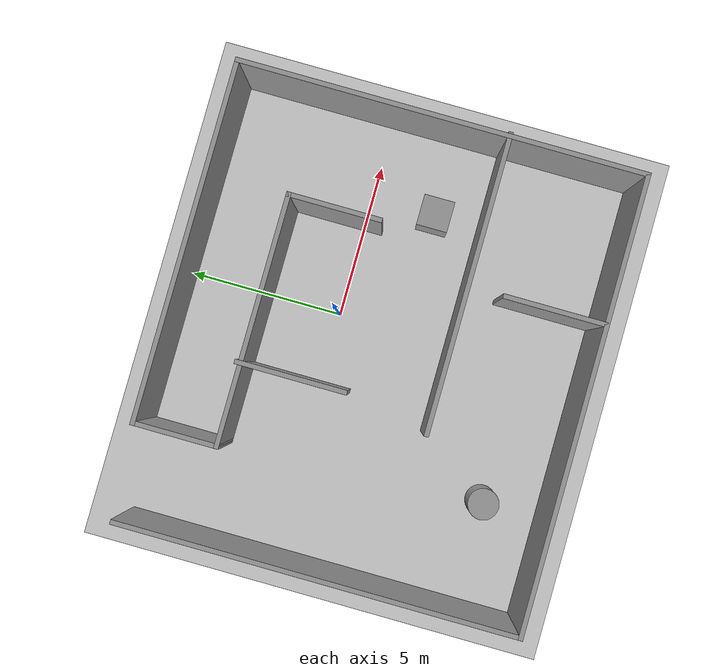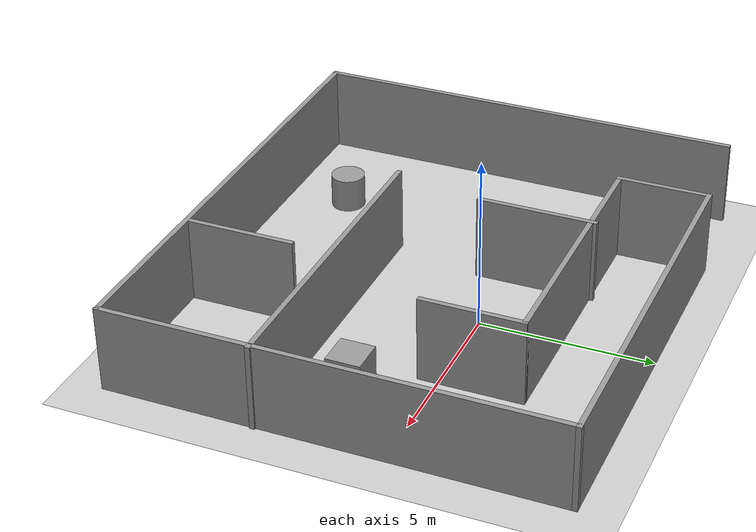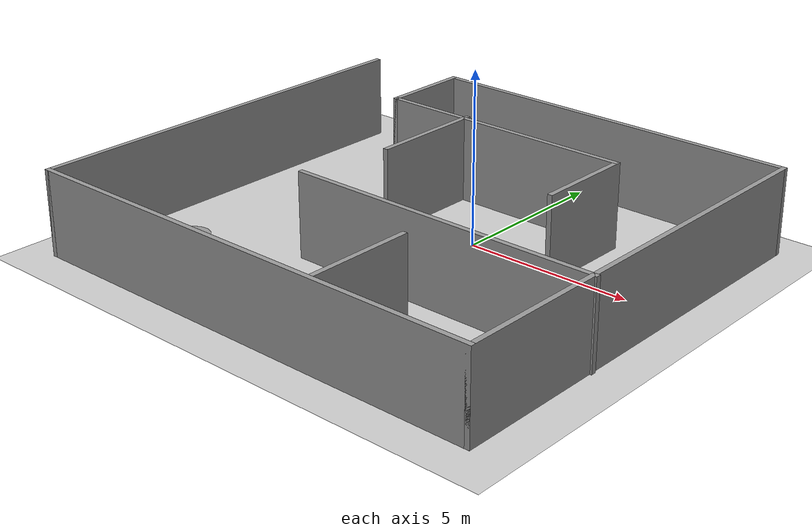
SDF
<sdf version="1.7">
 <world name="default">
  <light name="sun" type="directional">
   <pose>0 0 10 0 -0 0</pose>
   <diffuse>0.8 0.8 0.8 1</diffuse>
   <specular>0.2 0.2 0.2 1</specular>
   <attenuation>
    <range>1000</range>
    <constant>0.9</constant>
    <linear>0.01</linear>
    <quadratic>0.001</quadratic>
   </attenuation>
   <direction>-0.5 0.1 -0.9</direction>
   <spot><inner_angle>0</inner_angle><outer_angle>0</outer_angle><falloff>0</falloff></spot>
  </light>
  <model name="ground_plane">
   <static>1</static>
   <link name="link">
    <collision name="collision">
     <geometry><plane><normal>0 0 1</normal><size>100 100</size></plane></geometry>
     <surface>
      <contact><collide_bitmask>65535</collide_bitmask></contact>
      <friction><ode><mu>100</mu><mu2>50</mu2></ode></friction>
     </surface>
    </collision>
    <visual name="visual">
     <cast_shadows>0</cast_shadows>
     <geometry><plane><normal>0 0 1</normal><size>100 100</size></plane></geometry>
     <material>
      <script><uri>file://media/materials/scripts/gazebo.material</uri><name>Gazebo/Grey</name></script>
     </material>
    </visual>
   </link>
  </model>
  <gravity>0 0 -9.8</gravity>
  <magnetic_field>6e-06 2.3e-05 -4.2e-05</magnetic_field>
  <atmosphere type="adiabatic"/>
  <physics type="ode">
   <max_step_size>0.001</max_step_size>
   <real_time_factor>1</real_time_factor>
   <real_time_update_rate>1000</real_time_update_rate>
  </physics>
  <scene><ambient>0.4 0.4 0.4 1</ambient><background>0.7 0.7 0.7 1</background><shadows>1</shadows></scene>
  <spherical_coordinates>
   <surface_model>EARTH_WGS84</surface_model>
   <latitude_deg>0</latitude_deg>
   <longitude_deg>0</longitude_deg>
   <elevation>0</elevation>
   <heading_deg>0</heading_deg>
  </spherical_coordinates>
  <model name="worldd">
   <pose>-0.70113 -1.48092 0 0 -0 0</pose>
   <link name="Wall_11">
    <collision name="Wall_11_Collision">
     <geometry><box><size>9.5 0.15 2.5</size></box></geometry>
     <pose>0 0 1.25 0 -0 0</pose>
    </collision>
    <visual name="Wall_11_Visual">
     <pose>0 0 1.25 0 -0 0</pose>
     <geometry><box><size>9.5 0.15 2.5</size></box></geometry>
     <material>
      <script><uri>file://media/materials/scripts/gazebo.material</uri><name>Gazebo/Grey</name></script>
      <ambient>1 1 1 1</ambient>
     </material>
     <meta><layer>0</layer></meta>
    </visual>
    <pose>2.52566 -2.11179 0 0 -0 3.14159</pose>
   </link>
   <link name="Wall_13">
    <collision name="Wall_13_Collision">
     <geometry><box><size>3.25 0.15 2.5</size></box></geometry>
     <pose>0 0 1.25 0 -0 0</pose>
    </collision>
    <visual name="Wall_13_Visual">
     <pose>0 0 1.25 0 -0 0</pose>
     <geometry><box><size>3.25 0.15 2.5</size></box></geometry>
     <material>
      <script><uri>file://media/materials/scripts/gazebo.material</uri><name>Gazebo/Grey</name></script>
      <ambient>1 1 1 1</ambient>
     </material>
     <meta><layer>0</layer></meta>
    </visual>
    <pose>2.45386 -4.82587 0 0 -0 1.5708</pose>
   </link>
   <link name="Wall_15">
    <collision name="Wall_15_Collision">
     <geometry><box><size>3 0.15 2.5</size></box></geometry>
     <pose>0 0 1.25 0 -0 0</pose>
    </collision>
    <visual name="Wall_15_Visual">
     <pose>0 0 1.25 0 -0 0</pose>
     <geometry><box><size>3 0.15 2.5</size></box></geometry>
     <material>
      <script><uri>file://media/materials/scripts/gazebo.material</uri><name>Gazebo/Grey</name></script>
      <ambient>1 1 1 1</ambient>
     </material>
     <meta><layer>0</layer></meta>
    </visual>
    <pose>3.64934 2.4 0 0 -0 -1.5708</pose>
   </link>
   <link name="Wall_2">
    <collision name="Wall_2_Collision">
     <geometry><box><size>12.75 0.15 2.5</size></box></geometry>
     <pose>0 0 1.25 0 -0 0</pose>
    </collision>
    <visual name="Wall_2_Visual">
     <pose>0 0 1.25 0 -0 0</pose>
     <geometry><box><size>12.75 0.15 2.5</size></box></geometry>
     <material>
      <script><uri>file://media/materials/scripts/gazebo.material</uri><name>Gazebo/Grey</name></script>
      <ambient>1 1 1 1</ambient>
     </material>
     <meta><layer>0</layer></meta>
    </visual>
    <pose>-7.20066 -0.125 0 0 -0 -1.5708</pose>
   </link>
   <link name="Wall_3">
    <collision name="Wall_3_Collision">
     <geometry><box><size>14.5 0.15 2.5</size></box></geometry>
     <pose>0 0 1.25 0 -0 0</pose>
    </collision>
    <visual name="Wall_3_Visual">
     <pose>0 0 1.25 0 -0 0</pose>
     <geometry><box><size>14.5 0.15 2.5</size></box></geometry>
     <material>
      <script><uri>file://media/materials/scripts/gazebo.material</uri><name>Gazebo/Grey</name></script>
      <ambient>1 1 1 1</ambient>
     </material>
     <meta><layer>0</layer></meta>
    </visual>
    <pose>-0.025658 -6.425 0 0 -0 0</pose>
   </link>
   <link name="Wall_4">
    <collision name="Wall_4_Collision">
     <geometry><box><size>13 0.15 2.5</size></box></geometry>
     <pose>0 0 1.25 0 -0 0</pose>
    </collision>
    <visual name="Wall_4_Visual">
     <pose>0 0 1.25 0 -0 0</pose>
     <geometry><box><size>13 0.15 2.5</size></box></geometry>
     <material>
      <script><uri>file://media/materials/scripts/gazebo.material</uri><name>Gazebo/Grey</name></script>
      <ambient>1 1 1 1</ambient>
     </material>
     <meta><layer>0</layer></meta>
    </visual>
    <pose>7.14934 -0 0 0 -0 1.5708</pose>
   </link>
   <link name="Wall_5">
    <collision name="Wall_5_Collision">
     <geometry><box><size>11.5 0.15 2.5</size></box></geometry>
     <pose>0 0 1.25 0 -0 0</pose>
    </collision>
    <visual name="Wall_5_Visual">
     <pose>0 0 1.25 0 -0 0</pose>
     <geometry><box><size>11.5 0.15 2.5</size></box></geometry>
     <material>
      <script><uri>file://media/materials/scripts/gazebo.material</uri><name>Gazebo/Grey</name></script>
      <ambient>1 1 1 1</ambient>
     </material>
     <meta><layer>0</layer></meta>
    </visual>
    <pose>1.47434 6.425 0 0 -0 3.14159</pose>
   </link>
   <link name="Wall_6">
    <collision name="Wall_6_Collision">
     <geometry><box><size>2.75 0.15 2.5</size></box></geometry>
     <pose>0 0 1.25 0 -0 0</pose>
    </collision>
    <visual name="Wall_6_Visual">
     <pose>0 0 1.25 0 -0 0</pose>
     <geometry><box><size>2.75 0.15 2.5</size></box></geometry>
     <material>
      <script><uri>file://media/materials/scripts/gazebo.material</uri><name>Gazebo/Grey</name></script>
      <ambient>1 1 1 1</ambient>
     </material>
     <meta><layer>0</layer></meta>
    </visual>
    <pose>-4.20066 5.125 0 0 -0 -1.5708</pose>
   </link>
   <link name="Wall_7">
    <collision name="Wall_7_Collision">
     <geometry><box><size>8 0.15 2.5</size></box></geometry>
     <pose>0 0 1.25 0 -0 0</pose>
    </collision>
    <visual name="Wall_7_Visual">
     <pose>0 0 1.25 0 -0 0</pose>
     <geometry><box><size>8 0.15 2.5</size></box></geometry>
     <material>
      <script><uri>file://media/materials/scripts/gazebo.material</uri><name>Gazebo/Grey</name></script>
      <ambient>1 1 1 1</ambient>
     </material>
     <meta><layer>0</layer></meta>
    </visual>
    <pose>-0.275658 3.825 0 0 -0 0</pose>
   </link>
   <link name="Wall_9">
    <collision name="Wall_9_Collision">
     <geometry><box><size>3.5 0.15 2.5</size></box></geometry>
     <pose>0 0 1.25 0 -0 0</pose>
    </collision>
    <visual name="Wall_9_Visual">
     <pose>0 0 1.25 0 -0 0</pose>
     <geometry><box><size>3.5 0.15 2.5</size></box></geometry>
     <material>
      <script><uri>file://media/materials/scripts/gazebo.material</uri><name>Gazebo/Grey</name></script>
      <ambient>1 1 1 1</ambient>
     </material>
     <meta><layer>0</layer></meta>
    </visual>
    <pose>-1.60909 2.25843 0 0 -0 1.5708</pose>
   </link>
   <static>1</static>
  </model>
  <model name="unit_box">
   <pose>3.87549 -2.08034 0.499995 -1e-05 -0 0</pose>
   <link name="link">
    <inertial>
     <mass>1</mass>
     <inertia>
      <ixx>0.166667</ixx>
      <ixy>0</ixy>
      <ixz>0</ixz>
      <iyy>0.166667</iyy>
      <iyz>0</iyz>
      <izz>0.166667</izz>
     </inertia>
    </inertial>
    <collision name="collision"><geometry><box><size>1 1 1</size></box></geometry></collision>
    <visual name="visual">
     <geometry><box><size>1 1 1</size></box></geometry>
     <material>
      <script><name>Gazebo/Grey</name><uri>file://media/materials/scripts/gazebo.material</uri></script>
     </material>
    </visual>
   </link>
  </model>
  <model name="unit_cylinder">
   <pose>-4.56123 -5.99737 0.499997 3e-06 4e-06 -0</pose>
   <link name="link">
    <inertial>
     <mass>1</mass>
     <inertia><ixx>0.145833</ixx><ixy>0</ixy><ixz>0</ixz><iyy>0.145833</iyy><iyz>0</iyz><izz>0.125</izz></inertia>
    </inertial>
    <collision name="collision">
     <geometry><cylinder><radius>0.5</radius><length>1</length></cylinder></geometry>
    </collision>
    <visual name="visual">
     <geometry><cylinder><radius>0.5</radius><length>1</length></cylinder></geometry>
     <material>
      <script><name>Gazebo/Grey</name><uri>file://media/materials/scripts/gazebo.material</uri></script>
     </material>
    </visual>
   </link>
  </model>
 </world>
</sdf>
